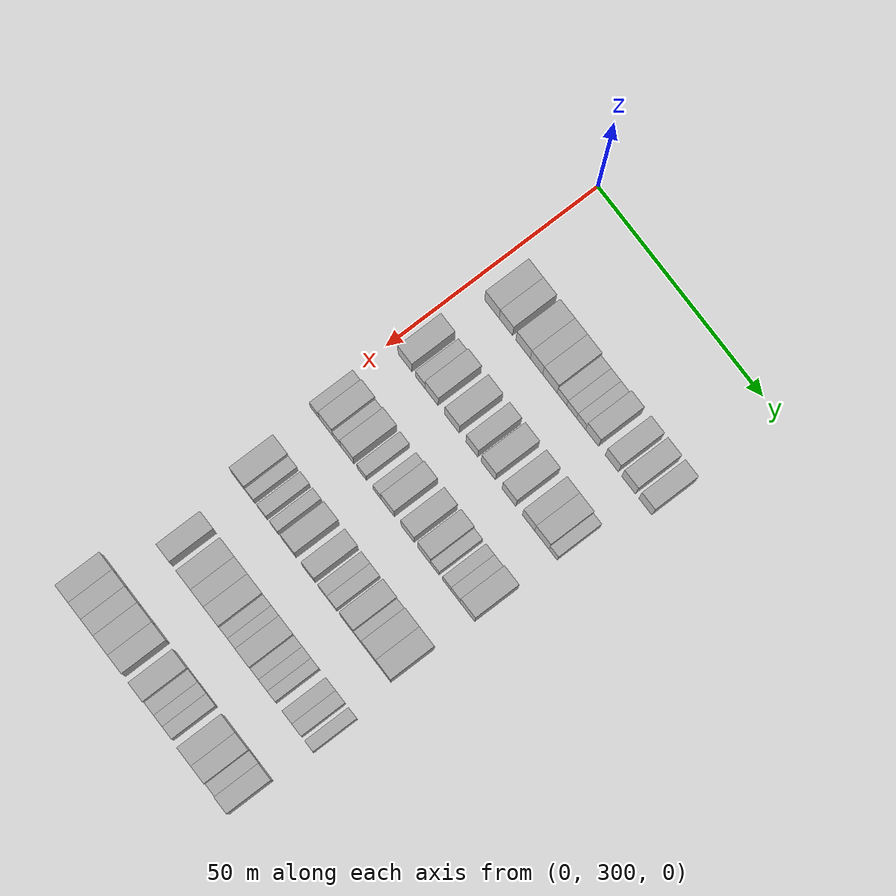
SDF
<sdf version="1.6">
 <world name="default">
  <model name="building_161">
   <static>1</static>
   <pose>25.0000 306.3941 0 0.000000 0.000000 0.000000</pose>
   <link name="link">
    <pose>0 0 4.50 0 0 0</pose>
    <collision name="collision"><geometry><box><size>10.0000 4.4257 9.0000</size></box></geometry></collision>
    <visual name="visual">
     <cast_shadows>0</cast_shadows>
     <geometry><box><size>10.0000 4.4257 9.0000</size></box></geometry>
     <material>
      <script>
       <uri>model://HANNAS_wall/materials/scripts</uri>
       <uri>model://HANNAS_wall/materials/textures</uri>
       <name>vrc/HANNAS_wall</name>
      </script>
     </material>
    </visual>
   </link>
  </model>
  <model name="building_162">
   <static>1</static>
   <pose>25.0000 310.6402 0 0.000000 0.000000 0.000000</pose>
   <link name="link">
    <pose>0 0 4.50 0 0 0</pose>
    <collision name="collision"><geometry><box><size>10.0000 4.0664 9.0000</size></box></geometry></collision>
    <visual name="visual">
     <cast_shadows>0</cast_shadows>
     <geometry><box><size>10.0000 4.0664 9.0000</size></box></geometry>
     <material>
      <script>
       <uri>model://HANNAS_wall/materials/scripts</uri>
       <uri>model://HANNAS_wall/materials/textures</uri>
       <name>vrc/HANNAS_wall</name>
      </script>
     </material>
    </visual>
   </link>
  </model>
  <model name="building_163">
   <static>1</static>
   <pose>25.0000 315.8951 0 0.000000 0.000000 0.000000</pose>
   <link name="link">
    <pose>0 0 4.50 0 0 0</pose>
    <collision name="collision"><geometry><box><size>10.0000 4.4435 9.0000</size></box></geometry></collision>
    <visual name="visual">
     <cast_shadows>0</cast_shadows>
     <geometry><box><size>10.0000 4.4435 9.0000</size></box></geometry>
     <material>
      <script>
       <uri>model://HANNAS_wall/materials/scripts</uri>
       <uri>model://HANNAS_wall/materials/textures</uri>
       <name>vrc/HANNAS_wall</name>
      </script>
     </material>
    </visual>
   </link>
  </model>
  <model name="building_164">
   <static>1</static>
   <pose>25.0000 319.9929 0 0.000000 0.000000 0.000000</pose>
   <link name="link">
    <pose>0 0 4.50 0 0 0</pose>
    <collision name="collision"><geometry><box><size>10.0000 3.7520 9.0000</size></box></geometry></collision>
    <visual name="visual">
     <cast_shadows>0</cast_shadows>
     <geometry><box><size>10.0000 3.7520 9.0000</size></box></geometry>
     <material>
      <script>
       <uri>model://HANNAS_wall/materials/scripts</uri>
       <uri>model://HANNAS_wall/materials/textures</uri>
       <name>vrc/HANNAS_wall</name>
      </script>
     </material>
    </visual>
   </link>
  </model>
  <model name="building_165">
   <static>1</static>
   <pose>25.0000 324.0551 0 0.000000 0.000000 0.000000</pose>
   <link name="link">
    <pose>0 0 4.50 0 0 0</pose>
    <collision name="collision"><geometry><box><size>10.0000 4.3724 9.0000</size></box></geometry></collision>
    <visual name="visual">
     <cast_shadows>0</cast_shadows>
     <geometry><box><size>10.0000 4.3724 9.0000</size></box></geometry>
     <material>
      <script>
       <uri>model://HANNAS_wall/materials/scripts</uri>
       <uri>model://HANNAS_wall/materials/textures</uri>
       <name>vrc/HANNAS_wall</name>
      </script>
     </material>
    </visual>
   </link>
  </model>
  <model name="building_166">
   <static>1</static>
   <pose>25.0000 327.7326 0 0.000000 0.000000 0.000000</pose>
   <link name="link">
    <pose>0 0 3.00 0 0 0</pose>
    <collision name="collision"><geometry><box><size>10.0000 2.9826 6.0000</size></box></geometry></collision>
    <visual name="visual">
     <cast_shadows>0</cast_shadows>
     <geometry><box><size>10.0000 2.9826 6.0000</size></box></geometry>
     <material>
      <script>
       <uri>model://HANNAS_wall/materials/scripts</uri>
       <uri>model://HANNAS_wall/materials/textures</uri>
       <name>vrc/HANNAS_wall</name>
      </script>
     </material>
    </visual>
   </link>
  </model>
  <model name="building_167">
   <static>1</static>
   <pose>25.0000 330.7120 0 0.000000 0.000000 0.000000</pose>
   <link name="link">
    <pose>0 0 3.00 0 0 0</pose>
    <collision name="collision"><geometry><box><size>10.0000 2.9762 6.0000</size></box></geometry></collision>
    <visual name="visual">
     <cast_shadows>0</cast_shadows>
     <geometry><box><size>10.0000 2.9762 6.0000</size></box></geometry>
     <material>
      <script>
       <uri>model://HANNAS_wall/materials/scripts</uri>
       <uri>model://HANNAS_wall/materials/textures</uri>
       <name>vrc/HANNAS_wall</name>
      </script>
     </material>
    </visual>
   </link>
  </model>
  <model name="building_168">
   <static>1</static>
   <pose>25.0000 333.5704 0 0.000000 0.000000 0.000000</pose>
   <link name="link">
    <pose>0 0 3.00 0 0 0</pose>
    <collision name="collision"><geometry><box><size>10.0000 2.7405 6.0000</size></box></geometry></collision>
    <visual name="visual">
     <cast_shadows>0</cast_shadows>
     <geometry><box><size>10.0000 2.7405 6.0000</size></box></geometry>
     <material>
      <script>
       <uri>model://HANNAS_wall/materials/scripts</uri>
       <uri>model://HANNAS_wall/materials/textures</uri>
       <name>vrc/HANNAS_wall</name>
      </script>
     </material>
    </visual>
   </link>
  </model>
  <model name="building_169">
   <static>1</static>
   <pose>25.0000 336.8882 0 0.000000 0.000000 0.000000</pose>
   <link name="link">
    <pose>0 0 4.50 0 0 0</pose>
    <collision name="collision"><geometry><box><size>10.0000 3.8950 9.0000</size></box></geometry></collision>
    <visual name="visual">
     <cast_shadows>0</cast_shadows>
     <geometry><box><size>10.0000 3.8950 9.0000</size></box></geometry>
     <material>
      <script>
       <uri>model://HANNAS_wall/materials/scripts</uri>
       <uri>model://HANNAS_wall/materials/textures</uri>
       <name>vrc/HANNAS_wall</name>
      </script>
     </material>
    </visual>
   </link>
  </model>
  <model name="building_170">
   <static>1</static>
   <pose>25.0000 342.8338 0 0.000000 0.000000 0.000000</pose>
   <link name="link">
    <pose>0 0 4.50 0 0 0</pose>
    <collision name="collision"><geometry><box><size>10.0000 3.9963 9.0000</size></box></geometry></collision>
    <visual name="visual">
     <cast_shadows>0</cast_shadows>
     <geometry><box><size>10.0000 3.9963 9.0000</size></box></geometry>
     <material>
      <script>
       <uri>model://HANNAS_wall/materials/scripts</uri>
       <uri>model://HANNAS_wall/materials/textures</uri>
       <name>vrc/HANNAS_wall</name>
      </script>
     </material>
    </visual>
   </link>
  </model>
  <model name="building_171">
   <static>1</static>
   <pose>25.0000 347.9075 0 0.000000 0.000000 0.000000</pose>
   <link name="link">
    <pose>0 0 4.50 0 0 0</pose>
    <collision name="collision"><geometry><box><size>10.0000 4.1511 9.0000</size></box></geometry></collision>
    <visual name="visual">
     <cast_shadows>0</cast_shadows>
     <geometry><box><size>10.0000 4.1511 9.0000</size></box></geometry>
     <material>
      <script>
       <uri>model://HANNAS_wall/materials/scripts</uri>
       <uri>model://HANNAS_wall/materials/textures</uri>
       <name>vrc/HANNAS_wall</name>
      </script>
     </material>
    </visual>
   </link>
  </model>
  <model name="building_172">
   <static>1</static>
   <pose>25.0000 352.9586 0 0.000000 0.000000 0.000000</pose>
   <link name="link">
    <pose>0 0 4.50 0 0 0</pose>
    <collision name="collision"><geometry><box><size>10.0000 3.9512 9.0000</size></box></geometry></collision>
    <visual name="visual">
     <cast_shadows>0</cast_shadows>
     <geometry><box><size>10.0000 3.9512 9.0000</size></box></geometry>
     <material>
      <script>
       <uri>model://HANNAS_wall/materials/scripts</uri>
       <uri>model://HANNAS_wall/materials/textures</uri>
       <name>vrc/HANNAS_wall</name>
      </script>
     </material>
    </visual>
   </link>
  </model>
  <model name="building_336">
   <static>1</static>
   <pose>44.0000 304.6355 0 0.000000 0.000000 0.000000</pose>
   <link name="link">
    <pose>0 0 4.50 0 0 0</pose>
    <collision name="collision"><geometry><box><size>10.0000 4.2992 9.0000</size></box></geometry></collision>
    <visual name="visual">
     <cast_shadows>0</cast_shadows>
     <geometry><box><size>10.0000 4.2992 9.0000</size></box></geometry>
     <material>
      <script>
       <uri>model://HANNAS_wall/materials/scripts</uri>
       <uri>model://HANNAS_wall/materials/textures</uri>
       <name>vrc/HANNAS_wall</name>
      </script>
     </material>
    </visual>
   </link>
  </model>
  <model name="building_337">
   <static>1</static>
   <pose>44.0000 309.2528 0 0.000000 0.000000 0.000000</pose>
   <link name="link">
    <pose>0 0 3.00 0 0 0</pose>
    <collision name="collision"><geometry><box><size>10.0000 2.9354 6.0000</size></box></geometry></collision>
    <visual name="visual">
     <cast_shadows>0</cast_shadows>
     <geometry><box><size>10.0000 2.9354 6.0000</size></box></geometry>
     <material>
      <script>
       <uri>model://HANNAS_wall/materials/scripts</uri>
       <uri>model://HANNAS_wall/materials/textures</uri>
       <name>vrc/HANNAS_wall</name>
      </script>
     </material>
    </visual>
   </link>
  </model>
  <model name="building_338">
   <static>1</static>
   <pose>44.0000 312.7383 0 0.000000 0.000000 0.000000</pose>
   <link name="link">
    <pose>0 0 4.50 0 0 0</pose>
    <collision name="collision"><geometry><box><size>10.0000 4.0356 9.0000</size></box></geometry></collision>
    <visual name="visual">
     <cast_shadows>0</cast_shadows>
     <geometry><box><size>10.0000 4.0356 9.0000</size></box></geometry>
     <material>
      <script>
       <uri>model://HANNAS_wall/materials/scripts</uri>
       <uri>model://HANNAS_wall/materials/textures</uri>
       <name>vrc/HANNAS_wall</name>
      </script>
     </material>
    </visual>
   </link>
  </model>
  <model name="building_339">
   <static>1</static>
   <pose>44.0000 318.9749 0 0.000000 0.000000 0.000000</pose>
   <link name="link">
    <pose>0 0 4.50 0 0 0</pose>
    <collision name="collision"><geometry><box><size>10.0000 4.4375 9.0000</size></box></geometry></collision>
    <visual name="visual">
     <cast_shadows>0</cast_shadows>
     <geometry><box><size>10.0000 4.4375 9.0000</size></box></geometry>
     <material>
      <script>
       <uri>model://HANNAS_wall/materials/scripts</uri>
       <uri>model://HANNAS_wall/materials/textures</uri>
       <name>vrc/HANNAS_wall</name>
      </script>
     </material>
    </visual>
   </link>
  </model>
  <model name="building_340">
   <static>1</static>
   <pose>44.0000 325.0242 0 0.000000 0.000000 0.000000</pose>
   <link name="link">
    <pose>0 0 4.50 0 0 0</pose>
    <collision name="collision"><geometry><box><size>10.0000 3.6612 9.0000</size></box></geometry></collision>
    <visual name="visual">
     <cast_shadows>0</cast_shadows>
     <geometry><box><size>10.0000 3.6612 9.0000</size></box></geometry>
     <material>
      <script>
       <uri>model://HANNAS_wall/materials/scripts</uri>
       <uri>model://HANNAS_wall/materials/textures</uri>
       <name>vrc/HANNAS_wall</name>
      </script>
     </material>
    </visual>
   </link>
  </model>
  <model name="building_341">
   <static>1</static>
   <pose>44.0000 330.0334 0 0.000000 0.000000 0.000000</pose>
   <link name="link">
    <pose>0 0 4.50 0 0 0</pose>
    <collision name="collision"><geometry><box><size>10.0000 4.3571 9.0000</size></box></geometry></collision>
    <visual name="visual">
     <cast_shadows>0</cast_shadows>
     <geometry><box><size>10.0000 4.3571 9.0000</size></box></geometry>
     <material>
      <script>
       <uri>model://HANNAS_wall/materials/scripts</uri>
       <uri>model://HANNAS_wall/materials/textures</uri>
       <name>vrc/HANNAS_wall</name>
      </script>
     </material>
    </visual>
   </link>
  </model>
  <model name="building_342">
   <static>1</static>
   <pose>44.0000 336.2896 0 0.000000 0.000000 0.000000</pose>
   <link name="link">
    <pose>0 0 4.50 0 0 0</pose>
    <collision name="collision"><geometry><box><size>10.0000 4.1553 9.0000</size></box></geometry></collision>
    <visual name="visual">
     <cast_shadows>0</cast_shadows>
     <geometry><box><size>10.0000 4.1553 9.0000</size></box></geometry>
     <material>
      <script>
       <uri>model://HANNAS_wall/materials/scripts</uri>
       <uri>model://HANNAS_wall/materials/textures</uri>
       <name>vrc/HANNAS_wall</name>
      </script>
     </material>
    </visual>
   </link>
  </model>
  <model name="building_343">
   <static>1</static>
   <pose>44.0000 342.2527 0 0.000000 0.000000 0.000000</pose>
   <link name="link">
    <pose>0 0 4.50 0 0 0</pose>
    <collision name="collision"><geometry><box><size>10.0000 3.7711 9.0000</size></box></geometry></collision>
    <visual name="visual">
     <cast_shadows>0</cast_shadows>
     <geometry><box><size>10.0000 3.7711 9.0000</size></box></geometry>
     <material>
      <script>
       <uri>model://HANNAS_wall/materials/scripts</uri>
       <uri>model://HANNAS_wall/materials/textures</uri>
       <name>vrc/HANNAS_wall</name>
      </script>
     </material>
    </visual>
   </link>
  </model>
  <model name="building_344">
   <static>1</static>
   <pose>44.0000 346.3016 0 0.000000 0.000000 0.000000</pose>
   <link name="link">
    <pose>0 0 4.50 0 0 0</pose>
    <collision name="collision"><geometry><box><size>10.0000 4.3267 9.0000</size></box></geometry></collision>
    <visual name="visual">
     <cast_shadows>0</cast_shadows>
     <geometry><box><size>10.0000 4.3267 9.0000</size></box></geometry>
     <material>
      <script>
       <uri>model://HANNAS_wall/materials/scripts</uri>
       <uri>model://HANNAS_wall/materials/textures</uri>
       <name>vrc/HANNAS_wall</name>
      </script>
     </material>
    </visual>
   </link>
  </model>
  <model name="building_345">
   <static>1</static>
   <pose>44.0000 349.7147 0 0.000000 0.000000 0.000000</pose>
   <link name="link">
    <pose>0 0 3.00 0 0 0</pose>
    <collision name="collision"><geometry><box><size>10.0000 2.4995 6.0000</size></box></geometry></collision>
    <visual name="visual">
     <cast_shadows>0</cast_shadows>
     <geometry><box><size>10.0000 2.4995 6.0000</size></box></geometry>
     <material>
      <script>
       <uri>model://HANNAS_wall/materials/scripts</uri>
       <uri>model://HANNAS_wall/materials/textures</uri>
       <name>vrc/HANNAS_wall</name>
      </script>
     </material>
    </visual>
   </link>
  </model>
  <model name="building_504">
   <static>1</static>
   <pose>63.0000 301.9767 0 0.000000 0.000000 0.000000</pose>
   <link name="link">
    <pose>0 0 3.00 0 0 0</pose>
    <collision name="collision"><geometry><box><size>10.0000 2.7462 6.0000</size></box></geometry></collision>
    <visual name="visual">
     <cast_shadows>0</cast_shadows>
     <geometry><box><size>10.0000 2.7462 6.0000</size></box></geometry>
     <material>
      <script>
       <uri>model://HANNAS_wall/materials/scripts</uri>
       <uri>model://HANNAS_wall/materials/textures</uri>
       <name>vrc/HANNAS_wall</name>
      </script>
     </material>
    </visual>
   </link>
  </model>
  <model name="building_505">
   <static>1</static>
   <pose>63.0000 305.4156 0 0.000000 0.000000 0.000000</pose>
   <link name="link">
    <pose>0 0 4.50 0 0 0</pose>
    <collision name="collision"><geometry><box><size>10.0000 4.1316 9.0000</size></box></geometry></collision>
    <visual name="visual">
     <cast_shadows>0</cast_shadows>
     <geometry><box><size>10.0000 4.1316 9.0000</size></box></geometry>
     <material>
      <script>
       <uri>model://HANNAS_wall/materials/scripts</uri>
       <uri>model://HANNAS_wall/materials/textures</uri>
       <name>vrc/HANNAS_wall</name>
      </script>
     </material>
    </visual>
   </link>
  </model>
  <model name="building_506">
   <static>1</static>
   <pose>63.0000 308.7071 0 0.000000 0.000000 0.000000</pose>
   <link name="link">
    <pose>0 0 3.00 0 0 0</pose>
    <collision name="collision"><geometry><box><size>10.0000 2.4514 6.0000</size></box></geometry></collision>
    <visual name="visual">
     <cast_shadows>0</cast_shadows>
     <geometry><box><size>10.0000 2.4514 6.0000</size></box></geometry>
     <material>
      <script>
       <uri>model://HANNAS_wall/materials/scripts</uri>
       <uri>model://HANNAS_wall/materials/textures</uri>
       <name>vrc/HANNAS_wall</name>
      </script>
     </material>
    </visual>
   </link>
  </model>
  <model name="building_507">
   <static>1</static>
   <pose>63.0000 311.9569 0 0.000000 0.000000 0.000000</pose>
   <link name="link">
    <pose>0 0 4.50 0 0 0</pose>
    <collision name="collision"><geometry><box><size>10.0000 4.0481 9.0000</size></box></geometry></collision>
    <visual name="visual">
     <cast_shadows>0</cast_shadows>
     <geometry><box><size>10.0000 4.0481 9.0000</size></box></geometry>
     <material>
      <script>
       <uri>model://HANNAS_wall/materials/scripts</uri>
       <uri>model://HANNAS_wall/materials/textures</uri>
       <name>vrc/HANNAS_wall</name>
      </script>
     </material>
    </visual>
   </link>
  </model>
  <model name="building_508">
   <static>1</static>
   <pose>63.0000 316.4136 0 0.000000 0.000000 0.000000</pose>
   <link name="link">
    <pose>0 0 3.00 0 0 0</pose>
    <collision name="collision"><geometry><box><size>10.0000 2.8655 6.0000</size></box></geometry></collision>
    <visual name="visual">
     <cast_shadows>0</cast_shadows>
     <geometry><box><size>10.0000 2.8655 6.0000</size></box></geometry>
     <material>
      <script>
       <uri>model://HANNAS_wall/materials/scripts</uri>
       <uri>model://HANNAS_wall/materials/textures</uri>
       <name>vrc/HANNAS_wall</name>
      </script>
     </material>
    </visual>
   </link>
  </model>
  <model name="building_509">
   <static>1</static>
   <pose>63.0000 321.0799 0 0.000000 0.000000 0.000000</pose>
   <link name="link">
    <pose>0 0 3.00 0 0 0</pose>
    <collision name="collision"><geometry><box><size>10.0000 2.4671 6.0000</size></box></geometry></collision>
    <visual name="visual">
     <cast_shadows>0</cast_shadows>
     <geometry><box><size>10.0000 2.4671 6.0000</size></box></geometry>
     <material>
      <script>
       <uri>model://HANNAS_wall/materials/scripts</uri>
       <uri>model://HANNAS_wall/materials/textures</uri>
       <name>vrc/HANNAS_wall</name>
      </script>
     </material>
    </visual>
   </link>
  </model>
  <model name="building_510">
   <static>1</static>
   <pose>63.0000 324.3358 0 0.000000 0.000000 0.000000</pose>
   <link name="link">
    <pose>0 0 4.50 0 0 0</pose>
    <collision name="collision"><geometry><box><size>10.0000 4.0448 9.0000</size></box></geometry></collision>
    <visual name="visual">
     <cast_shadows>0</cast_shadows>
     <geometry><box><size>10.0000 4.0448 9.0000</size></box></geometry>
     <material>
      <script>
       <uri>model://HANNAS_wall/materials/scripts</uri>
       <uri>model://HANNAS_wall/materials/textures</uri>
       <name>vrc/HANNAS_wall</name>
      </script>
     </material>
    </visual>
   </link>
  </model>
  <model name="building_511">
   <static>1</static>
   <pose>63.0000 330.3657 0 0.000000 0.000000 0.000000</pose>
   <link name="link">
    <pose>0 0 4.50 0 0 0</pose>
    <collision name="collision"><geometry><box><size>10.0000 4.0149 9.0000</size></box></geometry></collision>
    <visual name="visual">
     <cast_shadows>0</cast_shadows>
     <geometry><box><size>10.0000 4.0149 9.0000</size></box></geometry>
     <material>
      <script>
       <uri>model://HANNAS_wall/materials/scripts</uri>
       <uri>model://HANNAS_wall/materials/textures</uri>
       <name>vrc/HANNAS_wall</name>
      </script>
     </material>
    </visual>
   </link>
  </model>
  <model name="building_512">
   <static>1</static>
   <pose>63.0000 335.3804 0 0.000000 0.000000 0.000000</pose>
   <link name="link">
    <pose>0 0 4.50 0 0 0</pose>
    <collision name="collision"><geometry><box><size>10.0000 4.0146 9.0000</size></box></geometry></collision>
    <visual name="visual">
     <cast_shadows>0</cast_shadows>
     <geometry><box><size>10.0000 4.0146 9.0000</size></box></geometry>
     <material>
      <script>
       <uri>model://HANNAS_wall/materials/scripts</uri>
       <uri>model://HANNAS_wall/materials/textures</uri>
       <name>vrc/HANNAS_wall</name>
      </script>
     </material>
    </visual>
   </link>
  </model>
  <model name="building_513">
   <static>1</static>
   <pose>63.0000 338.6696 0 0.000000 0.000000 0.000000</pose>
   <link name="link">
    <pose>0 0 3.00 0 0 0</pose>
    <collision name="collision"><geometry><box><size>10.0000 2.5638 6.0000</size></box></geometry></collision>
    <visual name="visual">
     <cast_shadows>0</cast_shadows>
     <geometry><box><size>10.0000 2.5638 6.0000</size></box></geometry>
     <material>
      <script>
       <uri>model://HANNAS_wall/materials/scripts</uri>
       <uri>model://HANNAS_wall/materials/textures</uri>
       <name>vrc/HANNAS_wall</name>
      </script>
     </material>
    </visual>
   </link>
  </model>
  <model name="building_514">
   <static>1</static>
   <pose>63.0000 342.2303 0 0.000000 0.000000 0.000000</pose>
   <link name="link">
    <pose>0 0 3.00 0 0 0</pose>
    <collision name="collision"><geometry><box><size>10.0000 2.5577 6.0000</size></box></geometry></collision>
    <visual name="visual">
     <cast_shadows>0</cast_shadows>
     <geometry><box><size>10.0000 2.5577 6.0000</size></box></geometry>
     <material>
      <script>
       <uri>model://HANNAS_wall/materials/scripts</uri>
       <uri>model://HANNAS_wall/materials/textures</uri>
       <name>vrc/HANNAS_wall</name>
      </script>
     </material>
    </visual>
   </link>
  </model>
  <model name="building_515">
   <static>1</static>
   <pose>63.0000 344.9364 0 0.000000 0.000000 0.000000</pose>
   <link name="link">
    <pose>0 0 3.00 0 0 0</pose>
    <collision name="collision"><geometry><box><size>10.0000 2.8546 6.0000</size></box></geometry></collision>
    <visual name="visual">
     <cast_shadows>0</cast_shadows>
     <geometry><box><size>10.0000 2.8546 6.0000</size></box></geometry>
     <material>
      <script>
       <uri>model://HANNAS_wall/materials/scripts</uri>
       <uri>model://HANNAS_wall/materials/textures</uri>
       <name>vrc/HANNAS_wall</name>
      </script>
     </material>
    </visual>
   </link>
  </model>
  <model name="building_516">
   <static>1</static>
   <pose>63.0000 348.5630 0 0.000000 0.000000 0.000000</pose>
   <link name="link">
    <pose>0 0 4.50 0 0 0</pose>
    <collision name="collision"><geometry><box><size>10.0000 4.3986 9.0000</size></box></geometry></collision>
    <visual name="visual">
     <cast_shadows>0</cast_shadows>
     <geometry><box><size>10.0000 4.3986 9.0000</size></box></geometry>
     <material>
      <script>
       <uri>model://HANNAS_wall/materials/scripts</uri>
       <uri>model://HANNAS_wall/materials/textures</uri>
       <name>vrc/HANNAS_wall</name>
      </script>
     </material>
    </visual>
   </link>
  </model>
  <model name="building_679">
   <static>1</static>
   <pose>82.0000 303.9237 0 0.000000 0.000000 0.000000</pose>
   <link name="link">
    <pose>0 0 4.50 0 0 0</pose>
    <collision name="collision"><geometry><box><size>10.0000 4.4715 9.0000</size></box></geometry></collision>
    <visual name="visual">
     <cast_shadows>0</cast_shadows>
     <geometry><box><size>10.0000 4.4715 9.0000</size></box></geometry>
     <material>
      <script>
       <uri>model://HANNAS_wall/materials/scripts</uri>
       <uri>model://HANNAS_wall/materials/textures</uri>
       <name>vrc/HANNAS_wall</name>
      </script>
     </material>
    </visual>
   </link>
  </model>
  <model name="building_680">
   <static>1</static>
   <pose>82.0000 307.4776 0 0.000000 0.000000 0.000000</pose>
   <link name="link">
    <pose>0 0 3.00 0 0 0</pose>
    <collision name="collision"><geometry><box><size>10.0000 2.6364 6.0000</size></box></geometry></collision>
    <visual name="visual">
     <cast_shadows>0</cast_shadows>
     <geometry><box><size>10.0000 2.6364 6.0000</size></box></geometry>
     <material>
      <script>
       <uri>model://HANNAS_wall/materials/scripts</uri>
       <uri>model://HANNAS_wall/materials/textures</uri>
       <name>vrc/HANNAS_wall</name>
      </script>
     </material>
    </visual>
   </link>
  </model>
  <model name="building_681">
   <static>1</static>
   <pose>82.0000 311.2061 0 0.000000 0.000000 0.000000</pose>
   <link name="link">
    <pose>0 0 3.00 0 0 0</pose>
    <collision name="collision"><geometry><box><size>10.0000 2.8207 6.0000</size></box></geometry></collision>
    <visual name="visual">
     <cast_shadows>0</cast_shadows>
     <geometry><box><size>10.0000 2.8207 6.0000</size></box></geometry>
     <material>
      <script>
       <uri>model://HANNAS_wall/materials/scripts</uri>
       <uri>model://HANNAS_wall/materials/textures</uri>
       <name>vrc/HANNAS_wall</name>
      </script>
     </material>
    </visual>
   </link>
  </model>
  <model name="building_682">
   <static>1</static>
   <pose>82.0000 314.8757 0 0.000000 0.000000 0.000000</pose>
   <link name="link">
    <pose>0 0 3.00 0 0 0</pose>
    <collision name="collision"><geometry><box><size>10.0000 2.5185 6.0000</size></box></geometry></collision>
    <visual name="visual">
     <cast_shadows>0</cast_shadows>
     <geometry><box><size>10.0000 2.5185 6.0000</size></box></geometry>
     <material>
      <script>
       <uri>model://HANNAS_wall/materials/scripts</uri>
       <uri>model://HANNAS_wall/materials/textures</uri>
       <name>vrc/HANNAS_wall</name>
      </script>
     </material>
    </visual>
   </link>
  </model>
  <model name="building_683">
   <static>1</static>
   <pose>82.0000 319.2853 0 0.000000 0.000000 0.000000</pose>
   <link name="link">
    <pose>0 0 4.50 0 0 0</pose>
    <collision name="collision"><geometry><box><size>10.0000 4.3007 9.0000</size></box></geometry></collision>
    <visual name="visual">
     <cast_shadows>0</cast_shadows>
     <geometry><box><size>10.0000 4.3007 9.0000</size></box></geometry>
     <material>
      <script>
       <uri>model://HANNAS_wall/materials/scripts</uri>
       <uri>model://HANNAS_wall/materials/textures</uri>
       <name>vrc/HANNAS_wall</name>
      </script>
     </material>
    </visual>
   </link>
  </model>
  <model name="building_684">
   <static>1</static>
   <pose>82.0000 325.3515 0 0.000000 0.000000 0.000000</pose>
   <link name="link">
    <pose>0 0 4.50 0 0 0</pose>
    <collision name="collision"><geometry><box><size>10.0000 3.8316 9.0000</size></box></geometry></collision>
    <visual name="visual">
     <cast_shadows>0</cast_shadows>
     <geometry><box><size>10.0000 3.8316 9.0000</size></box></geometry>
     <material>
      <script>
       <uri>model://HANNAS_wall/materials/scripts</uri>
       <uri>model://HANNAS_wall/materials/textures</uri>
       <name>vrc/HANNAS_wall</name>
      </script>
     </material>
    </visual>
   </link>
  </model>
  <model name="building_685">
   <static>1</static>
   <pose>82.0000 329.6290 0 0.000000 0.000000 0.000000</pose>
   <link name="link">
    <pose>0 0 3.00 0 0 0</pose>
    <collision name="collision"><geometry><box><size>10.0000 2.7235 6.0000</size></box></geometry></collision>
    <visual name="visual">
     <cast_shadows>0</cast_shadows>
     <geometry><box><size>10.0000 2.7235 6.0000</size></box></geometry>
     <material>
      <script>
       <uri>model://HANNAS_wall/materials/scripts</uri>
       <uri>model://HANNAS_wall/materials/textures</uri>
       <name>vrc/HANNAS_wall</name>
      </script>
     </material>
    </visual>
   </link>
  </model>
  <model name="building_686">
   <static>1</static>
   <pose>82.0000 332.4433 0 0.000000 0.000000 0.000000</pose>
   <link name="link">
    <pose>0 0 3.00 0 0 0</pose>
    <collision name="collision"><geometry><box><size>10.0000 2.9051 6.0000</size></box></geometry></collision>
    <visual name="visual">
     <cast_shadows>0</cast_shadows>
     <geometry><box><size>10.0000 2.9051 6.0000</size></box></geometry>
     <material>
      <script>
       <uri>model://HANNAS_wall/materials/scripts</uri>
       <uri>model://HANNAS_wall/materials/textures</uri>
       <name>vrc/HANNAS_wall</name>
      </script>
     </material>
    </visual>
   </link>
  </model>
  <model name="building_687">
   <static>1</static>
   <pose>82.0000 336.9930 0 0.000000 0.000000 0.000000</pose>
   <link name="link">
    <pose>0 0 4.50 0 0 0</pose>
    <collision name="collision"><geometry><box><size>10.0000 4.1942 9.0000</size></box></geometry></collision>
    <visual name="visual">
     <cast_shadows>0</cast_shadows>
     <geometry><box><size>10.0000 4.1942 9.0000</size></box></geometry>
     <material>
      <script>
       <uri>model://HANNAS_wall/materials/scripts</uri>
       <uri>model://HANNAS_wall/materials/textures</uri>
       <name>vrc/HANNAS_wall</name>
      </script>
     </material>
    </visual>
   </link>
  </model>
  <model name="building_688">
   <static>1</static>
   <pose>82.0000 340.2976 0 0.000000 0.000000 0.000000</pose>
   <link name="link">
    <pose>0 0 3.00 0 0 0</pose>
    <collision name="collision"><geometry><box><size>10.0000 2.4151 6.0000</size></box></geometry></collision>
    <visual name="visual">
     <cast_shadows>0</cast_shadows>
     <geometry><box><size>10.0000 2.4151 6.0000</size></box></geometry>
     <material>
      <script>
       <uri>model://HANNAS_wall/materials/scripts</uri>
       <uri>model://HANNAS_wall/materials/textures</uri>
       <name>vrc/HANNAS_wall</name>
      </script>
     </material>
    </visual>
   </link>
  </model>
  <model name="building_689">
   <static>1</static>
   <pose>82.0000 343.6684 0 0.000000 0.000000 0.000000</pose>
   <link name="link">
    <pose>0 0 4.50 0 0 0</pose>
    <collision name="collision"><geometry><box><size>10.0000 4.3266 9.0000</size></box></geometry></collision>
    <visual name="visual">
     <cast_shadows>0</cast_shadows>
     <geometry><box><size>10.0000 4.3266 9.0000</size></box></geometry>
     <material>
      <script>
       <uri>model://HANNAS_wall/materials/scripts</uri>
       <uri>model://HANNAS_wall/materials/textures</uri>
       <name>vrc/HANNAS_wall</name>
      </script>
     </material>
    </visual>
   </link>
  </model>
  <model name="building_690">
   <static>1</static>
   <pose>82.0000 348.0741 0 0.000000 0.000000 0.000000</pose>
   <link name="link">
    <pose>0 0 4.50 0 0 0</pose>
    <collision name="collision"><geometry><box><size>10.0000 4.4847 9.0000</size></box></geometry></collision>
    <visual name="visual">
     <cast_shadows>0</cast_shadows>
     <geometry><box><size>10.0000 4.4847 9.0000</size></box></geometry>
     <material>
      <script>
       <uri>model://HANNAS_wall/materials/scripts</uri>
       <uri>model://HANNAS_wall/materials/textures</uri>
       <name>vrc/HANNAS_wall</name>
      </script>
     </material>
    </visual>
   </link>
  </model>
  <model name="building_849">
   <static>1</static>
   <pose>101.0000 306.8883 0 0.000000 0.000000 0.000000</pose>
   <link name="link">
    <pose>0 0 4.50 0 0 0</pose>
    <collision name="collision"><geometry><box><size>10.0000 4.0429 9.0000</size></box></geometry></collision>
    <visual name="visual">
     <cast_shadows>0</cast_shadows>
     <geometry><box><size>10.0000 4.0429 9.0000</size></box></geometry>
     <material>
      <script>
       <uri>model://HANNAS_wall/materials/scripts</uri>
       <uri>model://HANNAS_wall/materials/textures</uri>
       <name>vrc/HANNAS_wall</name>
      </script>
     </material>
    </visual>
   </link>
  </model>
  <model name="building_850">
   <static>1</static>
   <pose>101.0000 313.1054 0 0.000000 0.000000 0.000000</pose>
   <link name="link">
    <pose>0 0 4.50 0 0 0</pose>
    <collision name="collision"><geometry><box><size>10.0000 4.3915 9.0000</size></box></geometry></collision>
    <visual name="visual">
     <cast_shadows>0</cast_shadows>
     <geometry><box><size>10.0000 4.3915 9.0000</size></box></geometry>
     <material>
      <script>
       <uri>model://HANNAS_wall/materials/scripts</uri>
       <uri>model://HANNAS_wall/materials/textures</uri>
       <name>vrc/HANNAS_wall</name>
      </script>
     </material>
    </visual>
   </link>
  </model>
  <model name="building_851">
   <static>1</static>
   <pose>101.0000 317.2639 0 0.000000 0.000000 0.000000</pose>
   <link name="link">
    <pose>0 0 4.50 0 0 0</pose>
    <collision name="collision"><geometry><box><size>10.0000 3.9255 9.0000</size></box></geometry></collision>
    <visual name="visual">
     <cast_shadows>0</cast_shadows>
     <geometry><box><size>10.0000 3.9255 9.0000</size></box></geometry>
     <material>
      <script>
       <uri>model://HANNAS_wall/materials/scripts</uri>
       <uri>model://HANNAS_wall/materials/textures</uri>
       <name>vrc/HANNAS_wall</name>
      </script>
     </material>
    </visual>
   </link>
  </model>
  <model name="building_852">
   <static>1</static>
   <pose>101.0000 321.4514 0 0.000000 0.000000 0.000000</pose>
   <link name="link">
    <pose>0 0 4.50 0 0 0</pose>
    <collision name="collision"><geometry><box><size>10.0000 4.4494 9.0000</size></box></geometry></collision>
    <visual name="visual">
     <cast_shadows>0</cast_shadows>
     <geometry><box><size>10.0000 4.4494 9.0000</size></box></geometry>
     <material>
      <script>
       <uri>model://HANNAS_wall/materials/scripts</uri>
       <uri>model://HANNAS_wall/materials/textures</uri>
       <name>vrc/HANNAS_wall</name>
      </script>
     </material>
    </visual>
   </link>
  </model>
  <model name="building_853">
   <static>1</static>
   <pose>101.0000 324.9349 0 0.000000 0.000000 0.000000</pose>
   <link name="link">
    <pose>0 0 3.00 0 0 0</pose>
    <collision name="collision"><geometry><box><size>10.0000 2.5175 6.0000</size></box></geometry></collision>
    <visual name="visual">
     <cast_shadows>0</cast_shadows>
     <geometry><box><size>10.0000 2.5175 6.0000</size></box></geometry>
     <material>
      <script>
       <uri>model://HANNAS_wall/materials/scripts</uri>
       <uri>model://HANNAS_wall/materials/textures</uri>
       <name>vrc/HANNAS_wall</name>
      </script>
     </material>
    </visual>
   </link>
  </model>
  <model name="building_854">
   <static>1</static>
   <pose>101.0000 327.4886 0 0.000000 0.000000 0.000000</pose>
   <link name="link">
    <pose>0 0 3.00 0 0 0</pose>
    <collision name="collision"><geometry><box><size>10.0000 2.5899 6.0000</size></box></geometry></collision>
    <visual name="visual">
     <cast_shadows>0</cast_shadows>
     <geometry><box><size>10.0000 2.5899 6.0000</size></box></geometry>
     <material>
      <script>
       <uri>model://HANNAS_wall/materials/scripts</uri>
       <uri>model://HANNAS_wall/materials/textures</uri>
       <name>vrc/HANNAS_wall</name>
      </script>
     </material>
    </visual>
   </link>
  </model>
  <model name="building_855">
   <static>1</static>
   <pose>101.0000 330.9093 0 0.000000 0.000000 0.000000</pose>
   <link name="link">
    <pose>0 0 4.50 0 0 0</pose>
    <collision name="collision"><geometry><box><size>10.0000 4.2515 9.0000</size></box></geometry></collision>
    <visual name="visual">
     <cast_shadows>0</cast_shadows>
     <geometry><box><size>10.0000 4.2515 9.0000</size></box></geometry>
     <material>
      <script>
       <uri>model://HANNAS_wall/materials/scripts</uri>
       <uri>model://HANNAS_wall/materials/textures</uri>
       <name>vrc/HANNAS_wall</name>
      </script>
     </material>
    </visual>
   </link>
  </model>
  <model name="building_856">
   <static>1</static>
   <pose>101.0000 334.3100 0 0.000000 0.000000 0.000000</pose>
   <link name="link">
    <pose>0 0 3.00 0 0 0</pose>
    <collision name="collision"><geometry><box><size>10.0000 2.5499 6.0000</size></box></geometry></collision>
    <visual name="visual">
     <cast_shadows>0</cast_shadows>
     <geometry><box><size>10.0000 2.5499 6.0000</size></box></geometry>
     <material>
      <script>
       <uri>model://HANNAS_wall/materials/scripts</uri>
       <uri>model://HANNAS_wall/materials/textures</uri>
       <name>vrc/HANNAS_wall</name>
      </script>
     </material>
    </visual>
   </link>
  </model>
  <model name="building_857">
   <static>1</static>
   <pose>101.0000 336.9103 0 0.000000 0.000000 0.000000</pose>
   <link name="link">
    <pose>0 0 3.00 0 0 0</pose>
    <collision name="collision"><geometry><box><size>10.0000 2.6506 6.0000</size></box></geometry></collision>
    <visual name="visual">
     <cast_shadows>0</cast_shadows>
     <geometry><box><size>10.0000 2.6506 6.0000</size></box></geometry>
     <material>
      <script>
       <uri>model://HANNAS_wall/materials/scripts</uri>
       <uri>model://HANNAS_wall/materials/textures</uri>
       <name>vrc/HANNAS_wall</name>
      </script>
     </material>
    </visual>
   </link>
  </model>
  <model name="building_858">
   <static>1</static>
   <pose>101.0000 339.4473 0 0.000000 0.000000 0.000000</pose>
   <link name="link">
    <pose>0 0 3.00 0 0 0</pose>
    <collision name="collision"><geometry><box><size>10.0000 2.4235 6.0000</size></box></geometry></collision>
    <visual name="visual">
     <cast_shadows>0</cast_shadows>
     <geometry><box><size>10.0000 2.4235 6.0000</size></box></geometry>
     <material>
      <script>
       <uri>model://HANNAS_wall/materials/scripts</uri>
       <uri>model://HANNAS_wall/materials/textures</uri>
       <name>vrc/HANNAS_wall</name>
      </script>
     </material>
    </visual>
   </link>
  </model>
  <model name="building_859">
   <static>1</static>
   <pose>101.0000 344.1507 0 0.000000 0.000000 0.000000</pose>
   <link name="link">
    <pose>0 0 3.00 0 0 0</pose>
    <collision name="collision"><geometry><box><size>10.0000 2.9833 6.0000</size></box></geometry></collision>
    <visual name="visual">
     <cast_shadows>0</cast_shadows>
     <geometry><box><size>10.0000 2.9833 6.0000</size></box></geometry>
     <material>
      <script>
       <uri>model://HANNAS_wall/materials/scripts</uri>
       <uri>model://HANNAS_wall/materials/textures</uri>
       <name>vrc/HANNAS_wall</name>
      </script>
     </material>
    </visual>
   </link>
  </model>
  <model name="building_860">
   <static>1</static>
   <pose>101.0000 347.0640 0 0.000000 0.000000 0.000000</pose>
   <link name="link">
    <pose>0 0 3.00 0 0 0</pose>
    <collision name="collision"><geometry><box><size>10.0000 2.8435 6.0000</size></box></geometry></collision>
    <visual name="visual">
     <cast_shadows>0</cast_shadows>
     <geometry><box><size>10.0000 2.8435 6.0000</size></box></geometry>
     <material>
      <script>
       <uri>model://HANNAS_wall/materials/scripts</uri>
       <uri>model://HANNAS_wall/materials/textures</uri>
       <name>vrc/HANNAS_wall</name>
      </script>
     </material>
    </visual>
   </link>
  </model>
  <model name="building_861">
   <static>1</static>
   <pose>101.0000 350.7550 0 0.000000 0.000000 0.000000</pose>
   <link name="link">
    <pose>0 0 3.00 0 0 0</pose>
    <collision name="collision"><geometry><box><size>10.0000 2.5384 6.0000</size></box></geometry></collision>
    <visual name="visual">
     <cast_shadows>0</cast_shadows>
     <geometry><box><size>10.0000 2.5384 6.0000</size></box></geometry>
     <material>
      <script>
       <uri>model://HANNAS_wall/materials/scripts</uri>
       <uri>model://HANNAS_wall/materials/textures</uri>
       <name>vrc/HANNAS_wall</name>
      </script>
     </material>
    </visual>
   </link>
  </model>
  <model name="building_1020">
   <static>1</static>
   <pose>120.0000 301.7427 0 0.000000 0.000000 0.000000</pose>
   <link name="link">
    <pose>0 0 4.50 0 0 0</pose>
    <collision name="collision"><geometry><box><size>10.0000 3.9987 9.0000</size></box></geometry></collision>
    <visual name="visual">
     <cast_shadows>0</cast_shadows>
     <geometry><box><size>10.0000 3.9987 9.0000</size></box></geometry>
     <material>
      <script>
       <uri>model://HANNAS_wall/materials/scripts</uri>
       <uri>model://HANNAS_wall/materials/textures</uri>
       <name>vrc/HANNAS_wall</name>
      </script>
     </material>
    </visual>
   </link>
  </model>
  <model name="building_1021">
   <static>1</static>
   <pose>120.0000 305.6547 0 0.000000 0.000000 0.000000</pose>
   <link name="link">
    <pose>0 0 4.50 0 0 0</pose>
    <collision name="collision"><geometry><box><size>10.0000 3.8254 9.0000</size></box></geometry></collision>
    <visual name="visual">
     <cast_shadows>0</cast_shadows>
     <geometry><box><size>10.0000 3.8254 9.0000</size></box></geometry>
     <material>
      <script>
       <uri>model://HANNAS_wall/materials/scripts</uri>
       <uri>model://HANNAS_wall/materials/textures</uri>
       <name>vrc/HANNAS_wall</name>
      </script>
     </material>
    </visual>
   </link>
  </model>
  <model name="building_1022">
   <static>1</static>
   <pose>120.0000 309.4306 0 0.000000 0.000000 0.000000</pose>
   <link name="link">
    <pose>0 0 4.50 0 0 0</pose>
    <collision name="collision"><geometry><box><size>10.0000 3.7262 9.0000</size></box></geometry></collision>
    <visual name="visual">
     <cast_shadows>0</cast_shadows>
     <geometry><box><size>10.0000 3.7262 9.0000</size></box></geometry>
     <material>
      <script>
       <uri>model://HANNAS_wall/materials/scripts</uri>
       <uri>model://HANNAS_wall/materials/textures</uri>
       <name>vrc/HANNAS_wall</name>
      </script>
     </material>
    </visual>
   </link>
  </model>
  <model name="building_1023">
   <static>1</static>
   <pose>120.0000 313.5087 0 0.000000 0.000000 0.000000</pose>
   <link name="link">
    <pose>0 0 4.50 0 0 0</pose>
    <collision name="collision"><geometry><box><size>10.0000 4.4300 9.0000</size></box></geometry></collision>
    <visual name="visual">
     <cast_shadows>0</cast_shadows>
     <geometry><box><size>10.0000 4.4300 9.0000</size></box></geometry>
     <material>
      <script>
       <uri>model://HANNAS_wall/materials/scripts</uri>
       <uri>model://HANNAS_wall/materials/textures</uri>
       <name>vrc/HANNAS_wall</name>
      </script>
     </material>
    </visual>
   </link>
  </model>
  <model name="building_1024">
   <static>1</static>
   <pose>120.0000 317.8294 0 0.000000 0.000000 0.000000</pose>
   <link name="link">
    <pose>0 0 4.50 0 0 0</pose>
    <collision name="collision"><geometry><box><size>10.0000 4.2114 9.0000</size></box></geometry></collision>
    <visual name="visual">
     <cast_shadows>0</cast_shadows>
     <geometry><box><size>10.0000 4.2114 9.0000</size></box></geometry>
     <material>
      <script>
       <uri>model://HANNAS_wall/materials/scripts</uri>
       <uri>model://HANNAS_wall/materials/textures</uri>
       <name>vrc/HANNAS_wall</name>
      </script>
     </material>
    </visual>
   </link>
  </model>
  <model name="building_1025">
   <static>1</static>
   <pose>120.0000 324.1137 0 0.000000 0.000000 0.000000</pose>
   <link name="link">
    <pose>0 0 4.50 0 0 0</pose>
    <collision name="collision"><geometry><box><size>10.0000 4.3572 9.0000</size></box></geometry></collision>
    <visual name="visual">
     <cast_shadows>0</cast_shadows>
     <geometry><box><size>10.0000 4.3572 9.0000</size></box></geometry>
     <material>
      <script>
       <uri>model://HANNAS_wall/materials/scripts</uri>
       <uri>model://HANNAS_wall/materials/textures</uri>
       <name>vrc/HANNAS_wall</name>
      </script>
     </material>
    </visual>
   </link>
  </model>
  <model name="building_1026">
   <static>1</static>
   <pose>120.0000 327.7482 0 0.000000 0.000000 0.000000</pose>
   <link name="link">
    <pose>0 0 3.00 0 0 0</pose>
    <collision name="collision"><geometry><box><size>10.0000 2.9118 6.0000</size></box></geometry></collision>
    <visual name="visual">
     <cast_shadows>0</cast_shadows>
     <geometry><box><size>10.0000 2.9118 6.0000</size></box></geometry>
     <material>
      <script>
       <uri>model://HANNAS_wall/materials/scripts</uri>
       <uri>model://HANNAS_wall/materials/textures</uri>
       <name>vrc/HANNAS_wall</name>
      </script>
     </material>
    </visual>
   </link>
  </model>
  <model name="building_1027">
   <static>1</static>
   <pose>120.0000 330.5019 0 0.000000 0.000000 0.000000</pose>
   <link name="link">
    <pose>0 0 3.00 0 0 0</pose>
    <collision name="collision"><geometry><box><size>10.0000 2.5956 6.0000</size></box></geometry></collision>
    <visual name="visual">
     <cast_shadows>0</cast_shadows>
     <geometry><box><size>10.0000 2.5956 6.0000</size></box></geometry>
     <material>
      <script>
       <uri>model://HANNAS_wall/materials/scripts</uri>
       <uri>model://HANNAS_wall/materials/textures</uri>
       <name>vrc/HANNAS_wall</name>
      </script>
     </material>
    </visual>
   </link>
  </model>
  <model name="building_1028">
   <static>1</static>
   <pose>120.0000 333.2232 0 0.000000 0.000000 0.000000</pose>
   <link name="link">
    <pose>0 0 3.00 0 0 0</pose>
    <collision name="collision"><geometry><box><size>10.0000 2.8470 6.0000</size></box></geometry></collision>
    <visual name="visual">
     <cast_shadows>0</cast_shadows>
     <geometry><box><size>10.0000 2.8470 6.0000</size></box></geometry>
     <material>
      <script>
       <uri>model://HANNAS_wall/materials/scripts</uri>
       <uri>model://HANNAS_wall/materials/textures</uri>
       <name>vrc/HANNAS_wall</name>
      </script>
     </material>
    </visual>
   </link>
  </model>
  <model name="building_1029">
   <static>1</static>
   <pose>120.0000 338.7534 0 0.000000 0.000000 0.000000</pose>
   <link name="link">
    <pose>0 0 4.50 0 0 0</pose>
    <collision name="collision"><geometry><box><size>10.0000 4.2134 9.0000</size></box></geometry></collision>
    <visual name="visual">
     <cast_shadows>0</cast_shadows>
     <geometry><box><size>10.0000 4.2134 9.0000</size></box></geometry>
     <material>
      <script>
       <uri>model://HANNAS_wall/materials/scripts</uri>
       <uri>model://HANNAS_wall/materials/textures</uri>
       <name>vrc/HANNAS_wall</name>
      </script>
     </material>
    </visual>
   </link>
  </model>
  <model name="building_1030">
   <static>1</static>
   <pose>120.0000 342.8359 0 0.000000 0.000000 0.000000</pose>
   <link name="link">
    <pose>0 0 4.50 0 0 0</pose>
    <collision name="collision"><geometry><box><size>10.0000 3.9517 9.0000</size></box></geometry></collision>
    <visual name="visual">
     <cast_shadows>0</cast_shadows>
     <geometry><box><size>10.0000 3.9517 9.0000</size></box></geometry>
     <material>
      <script>
       <uri>model://HANNAS_wall/materials/scripts</uri>
       <uri>model://HANNAS_wall/materials/textures</uri>
       <name>vrc/HANNAS_wall</name>
      </script>
     </material>
    </visual>
   </link>
  </model>
  <model name="building_1031">
   <static>1</static>
   <pose>120.0000 346.3070 0 0.000000 0.000000 0.000000</pose>
   <link name="link">
    <pose>0 0 3.00 0 0 0</pose>
    <collision name="collision"><geometry><box><size>10.0000 2.9905 6.0000</size></box></geometry></collision>
    <visual name="visual">
     <cast_shadows>0</cast_shadows>
     <geometry><box><size>10.0000 2.9905 6.0000</size></box></geometry>
     <material>
      <script>
       <uri>model://HANNAS_wall/materials/scripts</uri>
       <uri>model://HANNAS_wall/materials/textures</uri>
       <name>vrc/HANNAS_wall</name>
      </script>
     </material>
    </visual>
   </link>
  </model>
  <model name="building_1032">
   <static>1</static>
   <pose>120.0000 349.6974 0 0.000000 0.000000 0.000000</pose>
   <link name="link">
    <pose>0 0 4.50 0 0 0</pose>
    <collision name="collision"><geometry><box><size>10.0000 3.7902 9.0000</size></box></geometry></collision>
    <visual name="visual">
     <cast_shadows>0</cast_shadows>
     <geometry><box><size>10.0000 3.7902 9.0000</size></box></geometry>
     <material>
      <script>
       <uri>model://HANNAS_wall/materials/scripts</uri>
       <uri>model://HANNAS_wall/materials/textures</uri>
       <name>vrc/HANNAS_wall</name>
      </script>
     </material>
    </visual>
   </link>
  </model>
 </world>
</sdf>
